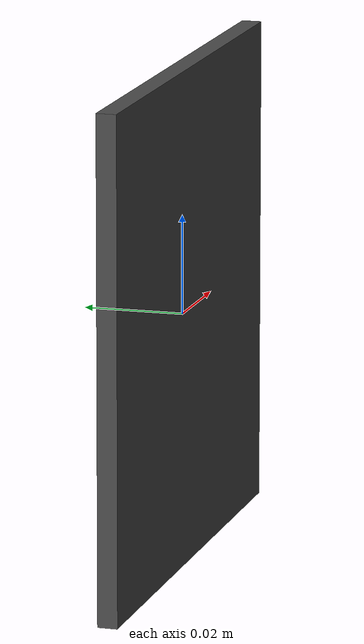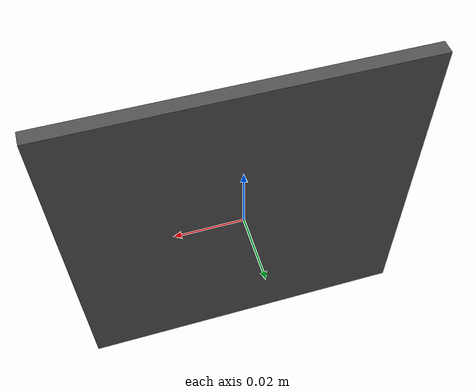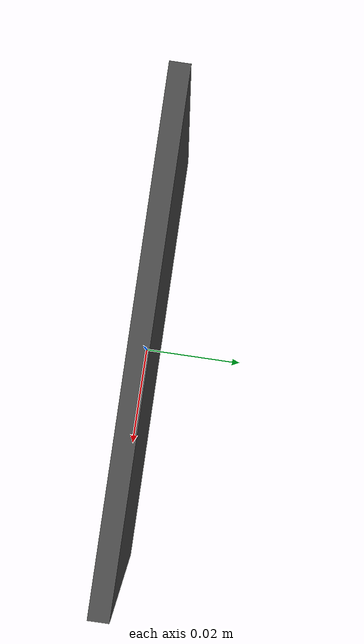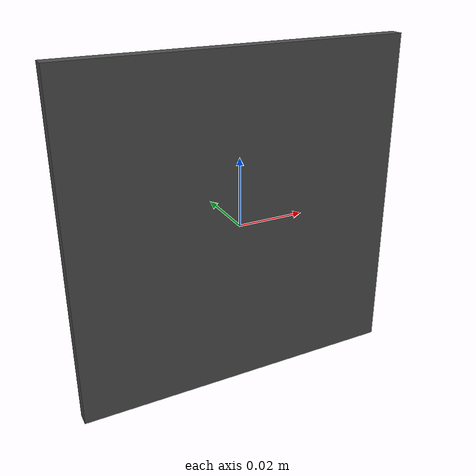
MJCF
<mujoco model="rectangular_obstacle">
  <asset>
    <texture name="tex_obstacle" type="2d" builtin="flat" rgb1="0.3 0.3 0.3" width="512" height="512"/>
    <material name="mat_obstacle" texture="tex_obstacle" shininess="0.2" specular="0.2"/>
  </asset>
  <worldbody>
    <body>
      <body name="object">
        <geom name="obstacle_geom" type="box" size="0.05 0.002 0.05" material="mat_obstacle"
              density="100000" friction="2.0 0.5 0.01" solref="0.001 1" solimp="0.95 0.99 0.001"
              condim="4" group="0"/>
        <geom name="obstacle_vis" type="box" size="0.05 0.002 0.05" material="mat_obstacle"
              contype="0" conaffinity="0" group="1"/>

        <site name="bottom_site" pos="0 0 -0.05" size="0.002" rgba="0 0 0 0"/>
        <site name="top_site" pos="0 0 0.05" size="0.002" rgba="0 0 0 0"/>
        <site name="horizontal_radius_site" pos="0.05 0.05 0" size="0.002" rgba="0 0 0 0"/>
      </body>
    </body>
  </worldbody>
</mujoco>
